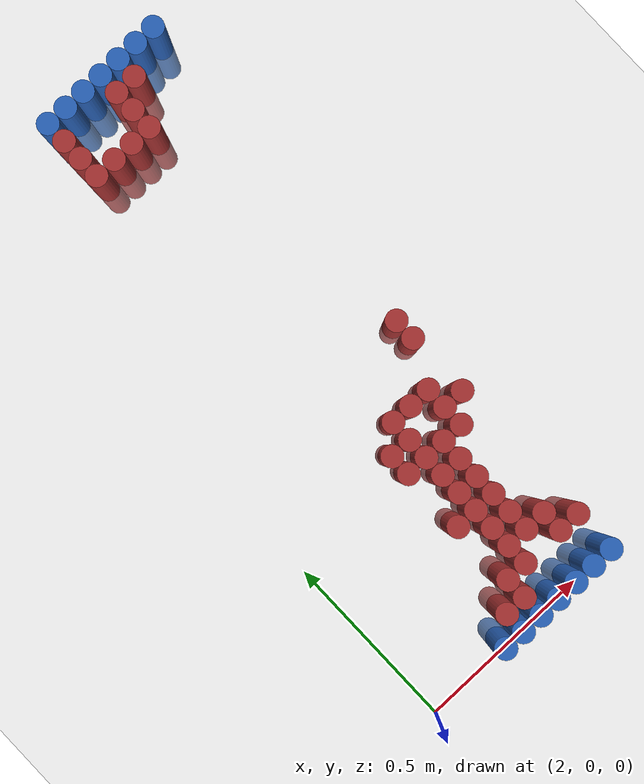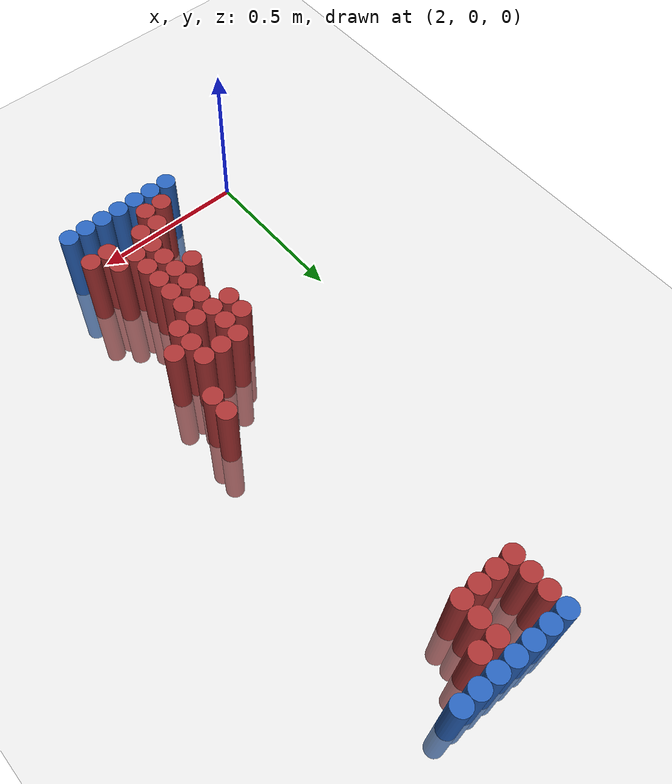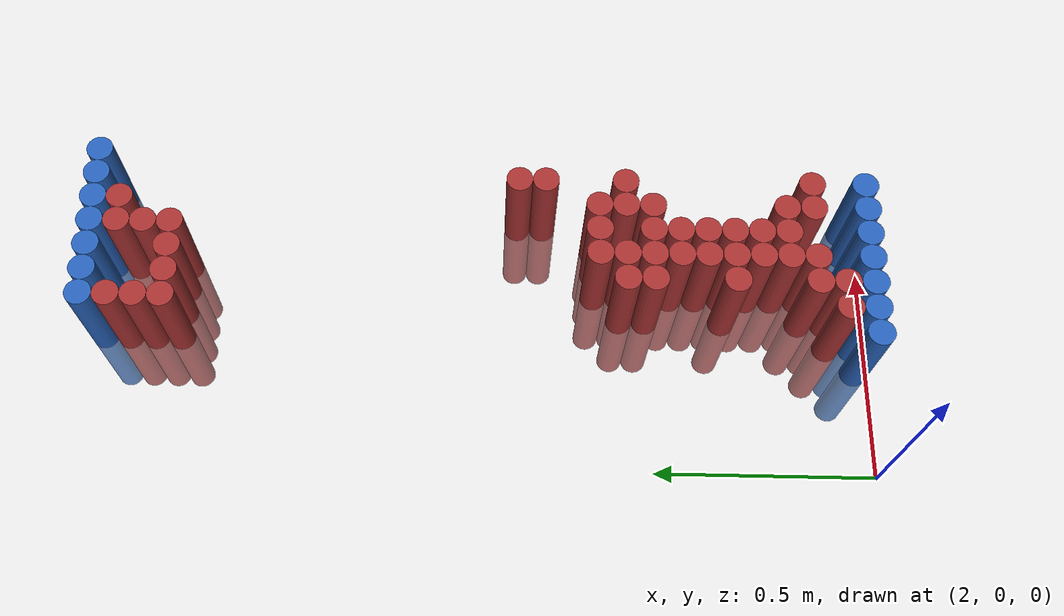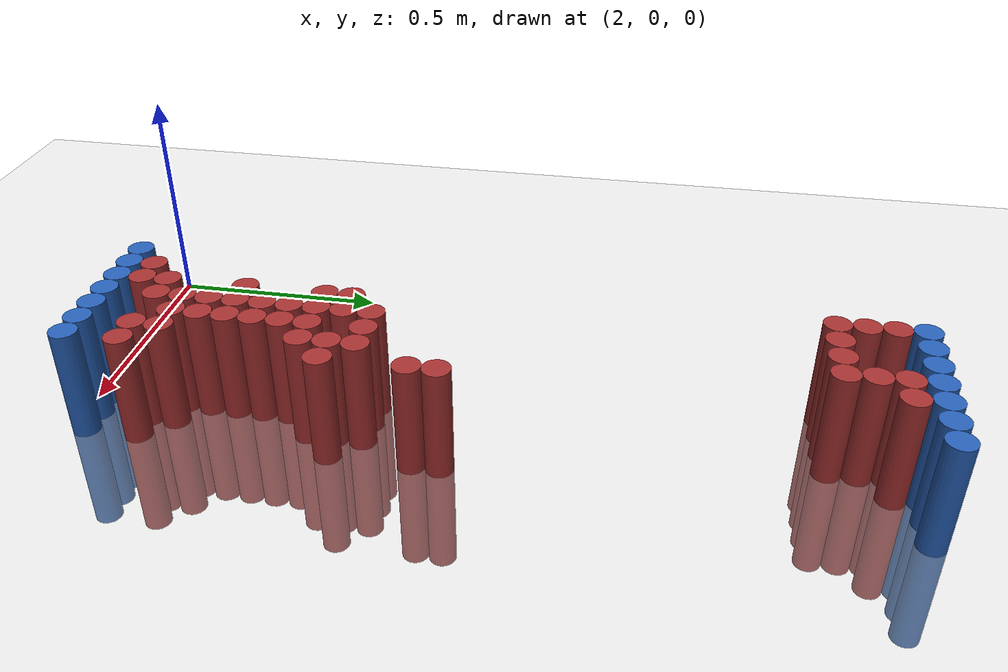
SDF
<sdf version="1.6">
 <world name="default">
  <model name="ground_plane">
   <static>1</static>
   <link name="link">
    <collision name="collision">
     <geometry><plane><normal>0 0 1</normal><size>100 100</size></plane></geometry>
     <surface><friction><ode><mu>100</mu><mu2>50</mu2></ode></friction></surface>
    </collision>
    <visual name="visual">
     <cast_shadows>0</cast_shadows>
     <geometry><plane><normal>0 0 1</normal><size>100 100</size></plane></geometry>
     <material>
      <script><uri>file://media/materials/scripts/gazebo.material</uri><name>Gazebo/Grey</name></script>
     </material>
    </visual>
   </link>
  </model>
  <model name="unit_cylinder_99">
   <static>1</static>
   <pose>2.310000 1.770000 0.000000 0.000000 0.000000 0.000000</pose>
   <link name="link">
    <inertial>
     <mass>1</mass>
     <inertia><ixx>0.145833</ixx><ixy>0</ixy><ixz>0</ixz><iyy>0.145833</iyy><iyz>0</iyz><izz>0.125</izz></inertia>
    </inertial>
    <collision name="collision">
     <geometry><cylinder><radius>0.030000</radius><length>0.5</length></cylinder></geometry>
    </collision>
    <visual name="visual">
     <geometry><cylinder><radius>0.030000</radius><length>0.5</length></cylinder></geometry>
     <material>
      <ambient>0.152000 0.379000 0.720000 1</ambient>
      <diffuse>0.152000 0.379000 0.720000 1</diffuse>
     </material>
     <material>
      <script><name>Gazebo/Grey</name><uri>file://media/materials/scripts/gazebo.material</uri></script>
     </material>
    </visual>
   </link>
  </model>
  <model name="unit_cylinder_100">
   <static>1</static>
   <pose>2.370000 1.770000 0.000000 0.000000 0.000000 0.000000</pose>
   <link name="link">
    <inertial>
     <mass>1</mass>
     <inertia><ixx>0.145833</ixx><ixy>0</ixy><ixz>0</ixz><iyy>0.145833</iyy><iyz>0</iyz><izz>0.125</izz></inertia>
    </inertial>
    <collision name="collision">
     <geometry><cylinder><radius>0.030000</radius><length>0.5</length></cylinder></geometry>
    </collision>
    <visual name="visual">
     <geometry><cylinder><radius>0.030000</radius><length>0.5</length></cylinder></geometry>
     <material>
      <ambient>0.152000 0.379000 0.720000 1</ambient>
      <diffuse>0.152000 0.379000 0.720000 1</diffuse>
     </material>
     <material>
      <script><name>Gazebo/Grey</name><uri>file://media/materials/scripts/gazebo.material</uri></script>
     </material>
    </visual>
   </link>
  </model>
  <model name="unit_cylinder_101">
   <static>1</static>
   <pose>2.430000 1.770000 0.000000 0.000000 0.000000 0.000000</pose>
   <link name="link">
    <inertial>
     <mass>1</mass>
     <inertia><ixx>0.145833</ixx><ixy>0</ixy><ixz>0</ixz><iyy>0.145833</iyy><iyz>0</iyz><izz>0.125</izz></inertia>
    </inertial>
    <collision name="collision">
     <geometry><cylinder><radius>0.030000</radius><length>0.5</length></cylinder></geometry>
    </collision>
    <visual name="visual">
     <geometry><cylinder><radius>0.030000</radius><length>0.5</length></cylinder></geometry>
     <material>
      <ambient>0.152000 0.379000 0.720000 1</ambient>
      <diffuse>0.152000 0.379000 0.720000 1</diffuse>
     </material>
     <material>
      <script><name>Gazebo/Grey</name><uri>file://media/materials/scripts/gazebo.material</uri></script>
     </material>
    </visual>
   </link>
  </model>
  <model name="unit_cylinder_102">
   <static>1</static>
   <pose>2.490000 1.770000 0.000000 0.000000 0.000000 0.000000</pose>
   <link name="link">
    <inertial>
     <mass>1</mass>
     <inertia><ixx>0.145833</ixx><ixy>0</ixy><ixz>0</ixz><iyy>0.145833</iyy><iyz>0</iyz><izz>0.125</izz></inertia>
    </inertial>
    <collision name="collision">
     <geometry><cylinder><radius>0.030000</radius><length>0.5</length></cylinder></geometry>
    </collision>
    <visual name="visual">
     <geometry><cylinder><radius>0.030000</radius><length>0.5</length></cylinder></geometry>
     <material>
      <ambient>0.152000 0.379000 0.720000 1</ambient>
      <diffuse>0.152000 0.379000 0.720000 1</diffuse>
     </material>
     <material>
      <script><name>Gazebo/Grey</name><uri>file://media/materials/scripts/gazebo.material</uri></script>
     </material>
    </visual>
   </link>
  </model>
  <model name="unit_cylinder_103">
   <static>1</static>
   <pose>2.550000 1.770000 0.000000 0.000000 0.000000 0.000000</pose>
   <link name="link">
    <inertial>
     <mass>1</mass>
     <inertia><ixx>0.145833</ixx><ixy>0</ixy><ixz>0</ixz><iyy>0.145833</iyy><iyz>0</iyz><izz>0.125</izz></inertia>
    </inertial>
    <collision name="collision">
     <geometry><cylinder><radius>0.030000</radius><length>0.5</length></cylinder></geometry>
    </collision>
    <visual name="visual">
     <geometry><cylinder><radius>0.030000</radius><length>0.5</length></cylinder></geometry>
     <material>
      <ambient>0.152000 0.379000 0.720000 1</ambient>
      <diffuse>0.152000 0.379000 0.720000 1</diffuse>
     </material>
     <material>
      <script><name>Gazebo/Grey</name><uri>file://media/materials/scripts/gazebo.material</uri></script>
     </material>
    </visual>
   </link>
  </model>
  <model name="unit_cylinder_104">
   <static>1</static>
   <pose>2.610000 1.770000 0.000000 0.000000 0.000000 0.000000</pose>
   <link name="link">
    <inertial>
     <mass>1</mass>
     <inertia><ixx>0.145833</ixx><ixy>0</ixy><ixz>0</ixz><iyy>0.145833</iyy><iyz>0</iyz><izz>0.125</izz></inertia>
    </inertial>
    <collision name="collision">
     <geometry><cylinder><radius>0.030000</radius><length>0.5</length></cylinder></geometry>
    </collision>
    <visual name="visual">
     <geometry><cylinder><radius>0.030000</radius><length>0.5</length></cylinder></geometry>
     <material>
      <ambient>0.152000 0.379000 0.720000 1</ambient>
      <diffuse>0.152000 0.379000 0.720000 1</diffuse>
     </material>
     <material>
      <script><name>Gazebo/Grey</name><uri>file://media/materials/scripts/gazebo.material</uri></script>
     </material>
    </visual>
   </link>
  </model>
  <model name="unit_cylinder_105">
   <static>1</static>
   <pose>2.670000 1.770000 0.000000 0.000000 0.000000 0.000000</pose>
   <link name="link">
    <inertial>
     <mass>1</mass>
     <inertia><ixx>0.145833</ixx><ixy>0</ixy><ixz>0</ixz><iyy>0.145833</iyy><iyz>0</iyz><izz>0.125</izz></inertia>
    </inertial>
    <collision name="collision">
     <geometry><cylinder><radius>0.030000</radius><length>0.5</length></cylinder></geometry>
    </collision>
    <visual name="visual">
     <geometry><cylinder><radius>0.030000</radius><length>0.5</length></cylinder></geometry>
     <material>
      <ambient>0.152000 0.379000 0.720000 1</ambient>
      <diffuse>0.152000 0.379000 0.720000 1</diffuse>
     </material>
     <material>
      <script><name>Gazebo/Grey</name><uri>file://media/materials/scripts/gazebo.material</uri></script>
     </material>
    </visual>
   </link>
  </model>
  <model name="unit_cylinder_126">
   <static>1</static>
   <pose>2.310000 1.710000 0.000000 0.000000 0.000000 0.000000</pose>
   <link name="link">
    <inertial>
     <mass>1</mass>
     <inertia><ixx>0.145833</ixx><ixy>0</ixy><ixz>0</ixz><iyy>0.145833</iyy><iyz>0</iyz><izz>0.125</izz></inertia>
    </inertial>
    <collision name="collision">
     <geometry><cylinder><radius>0.030000</radius><length>0.5</length></cylinder></geometry>
    </collision>
    <visual name="visual">
     <geometry><cylinder><radius>0.030000</radius><length>0.5</length></cylinder></geometry>
     <material>
      <ambient>0.648000 0.192000 0.192000 1</ambient>
      <diffuse>0.648000 0.192000 0.192000 1</diffuse>
     </material>
     <material>
      <script><name>Gazebo/Grey</name><uri>file://media/materials/scripts/gazebo.material</uri></script>
     </material>
    </visual>
   </link>
  </model>
  <model name="unit_cylinder_127">
   <static>1</static>
   <pose>2.490000 1.710000 0.000000 0.000000 0.000000 0.000000</pose>
   <link name="link">
    <inertial>
     <mass>1</mass>
     <inertia><ixx>0.145833</ixx><ixy>0</ixy><ixz>0</ixz><iyy>0.145833</iyy><iyz>0</iyz><izz>0.125</izz></inertia>
    </inertial>
    <collision name="collision">
     <geometry><cylinder><radius>0.030000</radius><length>0.5</length></cylinder></geometry>
    </collision>
    <visual name="visual">
     <geometry><cylinder><radius>0.030000</radius><length>0.5</length></cylinder></geometry>
     <material>
      <ambient>0.648000 0.192000 0.192000 1</ambient>
      <diffuse>0.648000 0.192000 0.192000 1</diffuse>
     </material>
     <material>
      <script><name>Gazebo/Grey</name><uri>file://media/materials/scripts/gazebo.material</uri></script>
     </material>
    </visual>
   </link>
  </model>
  <model name="unit_cylinder_128">
   <static>1</static>
   <pose>2.550000 1.710000 0.000000 0.000000 0.000000 0.000000</pose>
   <link name="link">
    <inertial>
     <mass>1</mass>
     <inertia><ixx>0.145833</ixx><ixy>0</ixy><ixz>0</ixz><iyy>0.145833</iyy><iyz>0</iyz><izz>0.125</izz></inertia>
    </inertial>
    <collision name="collision">
     <geometry><cylinder><radius>0.030000</radius><length>0.5</length></cylinder></geometry>
    </collision>
    <visual name="visual">
     <geometry><cylinder><radius>0.030000</radius><length>0.5</length></cylinder></geometry>
     <material>
      <ambient>0.648000 0.192000 0.192000 1</ambient>
      <diffuse>0.648000 0.192000 0.192000 1</diffuse>
     </material>
     <material>
      <script><name>Gazebo/Grey</name><uri>file://media/materials/scripts/gazebo.material</uri></script>
     </material>
    </visual>
   </link>
  </model>
  <model name="unit_cylinder_141">
   <static>1</static>
   <pose>2.310000 1.650000 0.000000 0.000000 0.000000 0.000000</pose>
   <link name="link">
    <inertial>
     <mass>1</mass>
     <inertia><ixx>0.145833</ixx><ixy>0</ixy><ixz>0</ixz><iyy>0.145833</iyy><iyz>0</iyz><izz>0.125</izz></inertia>
    </inertial>
    <collision name="collision">
     <geometry><cylinder><radius>0.030000</radius><length>0.5</length></cylinder></geometry>
    </collision>
    <visual name="visual">
     <geometry><cylinder><radius>0.030000</radius><length>0.5</length></cylinder></geometry>
     <material>
      <ambient>0.648000 0.192000 0.192000 1</ambient>
      <diffuse>0.648000 0.192000 0.192000 1</diffuse>
     </material>
     <material>
      <script><name>Gazebo/Grey</name><uri>file://media/materials/scripts/gazebo.material</uri></script>
     </material>
    </visual>
   </link>
  </model>
  <model name="unit_cylinder_142">
   <static>1</static>
   <pose>2.490000 1.650000 0.000000 0.000000 0.000000 0.000000</pose>
   <link name="link">
    <inertial>
     <mass>1</mass>
     <inertia><ixx>0.145833</ixx><ixy>0</ixy><ixz>0</ixz><iyy>0.145833</iyy><iyz>0</iyz><izz>0.125</izz></inertia>
    </inertial>
    <collision name="collision">
     <geometry><cylinder><radius>0.030000</radius><length>0.5</length></cylinder></geometry>
    </collision>
    <visual name="visual">
     <geometry><cylinder><radius>0.030000</radius><length>0.5</length></cylinder></geometry>
     <material>
      <ambient>0.648000 0.192000 0.192000 1</ambient>
      <diffuse>0.648000 0.192000 0.192000 1</diffuse>
     </material>
     <material>
      <script><name>Gazebo/Grey</name><uri>file://media/materials/scripts/gazebo.material</uri></script>
     </material>
    </visual>
   </link>
  </model>
  <model name="unit_cylinder_148">
   <static>1</static>
   <pose>2.310000 1.590000 0.000000 0.000000 0.000000 0.000000</pose>
   <link name="link">
    <inertial>
     <mass>1</mass>
     <inertia><ixx>0.145833</ixx><ixy>0</ixy><ixz>0</ixz><iyy>0.145833</iyy><iyz>0</iyz><izz>0.125</izz></inertia>
    </inertial>
    <collision name="collision">
     <geometry><cylinder><radius>0.030000</radius><length>0.5</length></cylinder></geometry>
    </collision>
    <visual name="visual">
     <geometry><cylinder><radius>0.030000</radius><length>0.5</length></cylinder></geometry>
     <material>
      <ambient>0.648000 0.192000 0.192000 1</ambient>
      <diffuse>0.648000 0.192000 0.192000 1</diffuse>
     </material>
     <material>
      <script><name>Gazebo/Grey</name><uri>file://media/materials/scripts/gazebo.material</uri></script>
     </material>
    </visual>
   </link>
  </model>
  <model name="unit_cylinder_149">
   <static>1</static>
   <pose>2.370000 1.590000 0.000000 0.000000 0.000000 0.000000</pose>
   <link name="link">
    <inertial>
     <mass>1</mass>
     <inertia><ixx>0.145833</ixx><ixy>0</ixy><ixz>0</ixz><iyy>0.145833</iyy><iyz>0</iyz><izz>0.125</izz></inertia>
    </inertial>
    <collision name="collision">
     <geometry><cylinder><radius>0.030000</radius><length>0.5</length></cylinder></geometry>
    </collision>
    <visual name="visual">
     <geometry><cylinder><radius>0.030000</radius><length>0.5</length></cylinder></geometry>
     <material>
      <ambient>0.648000 0.192000 0.192000 1</ambient>
      <diffuse>0.648000 0.192000 0.192000 1</diffuse>
     </material>
     <material>
      <script><name>Gazebo/Grey</name><uri>file://media/materials/scripts/gazebo.material</uri></script>
     </material>
    </visual>
   </link>
  </model>
  <model name="unit_cylinder_150">
   <static>1</static>
   <pose>2.430000 1.590000 0.000000 0.000000 0.000000 0.000000</pose>
   <link name="link">
    <inertial>
     <mass>1</mass>
     <inertia><ixx>0.145833</ixx><ixy>0</ixy><ixz>0</ixz><iyy>0.145833</iyy><iyz>0</iyz><izz>0.125</izz></inertia>
    </inertial>
    <collision name="collision">
     <geometry><cylinder><radius>0.030000</radius><length>0.5</length></cylinder></geometry>
    </collision>
    <visual name="visual">
     <geometry><cylinder><radius>0.030000</radius><length>0.5</length></cylinder></geometry>
     <material>
      <ambient>0.648000 0.192000 0.192000 1</ambient>
      <diffuse>0.648000 0.192000 0.192000 1</diffuse>
     </material>
     <material>
      <script><name>Gazebo/Grey</name><uri>file://media/materials/scripts/gazebo.material</uri></script>
     </material>
    </visual>
   </link>
  </model>
  <model name="unit_cylinder_151">
   <static>1</static>
   <pose>2.490000 1.590000 0.000000 0.000000 0.000000 0.000000</pose>
   <link name="link">
    <inertial>
     <mass>1</mass>
     <inertia><ixx>0.145833</ixx><ixy>0</ixy><ixz>0</ixz><iyy>0.145833</iyy><iyz>0</iyz><izz>0.125</izz></inertia>
    </inertial>
    <collision name="collision">
     <geometry><cylinder><radius>0.030000</radius><length>0.5</length></cylinder></geometry>
    </collision>
    <visual name="visual">
     <geometry><cylinder><radius>0.030000</radius><length>0.5</length></cylinder></geometry>
     <material>
      <ambient>0.648000 0.192000 0.192000 1</ambient>
      <diffuse>0.648000 0.192000 0.192000 1</diffuse>
     </material>
     <material>
      <script><name>Gazebo/Grey</name><uri>file://media/materials/scripts/gazebo.material</uri></script>
     </material>
    </visual>
   </link>
  </model>
  <model name="unit_cylinder_180">
   <static>1</static>
   <pose>2.610000 0.810000 0.000000 0.000000 0.000000 0.000000</pose>
   <link name="link">
    <inertial>
     <mass>1</mass>
     <inertia><ixx>0.145833</ixx><ixy>0</ixy><ixz>0</ixz><iyy>0.145833</iyy><iyz>0</iyz><izz>0.125</izz></inertia>
    </inertial>
    <collision name="collision">
     <geometry><cylinder><radius>0.030000</radius><length>0.5</length></cylinder></geometry>
    </collision>
    <visual name="visual">
     <geometry><cylinder><radius>0.030000</radius><length>0.5</length></cylinder></geometry>
     <material>
      <ambient>0.648000 0.192000 0.192000 1</ambient>
      <diffuse>0.648000 0.192000 0.192000 1</diffuse>
     </material>
     <material>
      <script><name>Gazebo/Grey</name><uri>file://media/materials/scripts/gazebo.material</uri></script>
     </material>
    </visual>
   </link>
  </model>
  <model name="unit_cylinder_188">
   <static>1</static>
   <pose>2.610000 0.750000 0.000000 0.000000 0.000000 0.000000</pose>
   <link name="link">
    <inertial>
     <mass>1</mass>
     <inertia><ixx>0.145833</ixx><ixy>0</ixy><ixz>0</ixz><iyy>0.145833</iyy><iyz>0</iyz><izz>0.125</izz></inertia>
    </inertial>
    <collision name="collision">
     <geometry><cylinder><radius>0.030000</radius><length>0.5</length></cylinder></geometry>
    </collision>
    <visual name="visual">
     <geometry><cylinder><radius>0.030000</radius><length>0.5</length></cylinder></geometry>
     <material>
      <ambient>0.648000 0.192000 0.192000 1</ambient>
      <diffuse>0.648000 0.192000 0.192000 1</diffuse>
     </material>
     <material>
      <script><name>Gazebo/Grey</name><uri>file://media/materials/scripts/gazebo.material</uri></script>
     </material>
    </visual>
   </link>
  </model>
  <model name="unit_cylinder_201">
   <static>1</static>
   <pose>2.430000 0.630000 0.000000 0.000000 0.000000 0.000000</pose>
   <link name="link">
    <inertial>
     <mass>1</mass>
     <inertia><ixx>0.145833</ixx><ixy>0</ixy><ixz>0</ixz><iyy>0.145833</iyy><iyz>0</iyz><izz>0.125</izz></inertia>
    </inertial>
    <collision name="collision">
     <geometry><cylinder><radius>0.030000</radius><length>0.5</length></cylinder></geometry>
    </collision>
    <visual name="visual">
     <geometry><cylinder><radius>0.030000</radius><length>0.5</length></cylinder></geometry>
     <material>
      <ambient>0.648000 0.192000 0.192000 1</ambient>
      <diffuse>0.648000 0.192000 0.192000 1</diffuse>
     </material>
     <material>
      <script><name>Gazebo/Grey</name><uri>file://media/materials/scripts/gazebo.material</uri></script>
     </material>
    </visual>
   </link>
  </model>
  <model name="unit_cylinder_202">
   <static>1</static>
   <pose>2.490000 0.630000 0.000000 0.000000 0.000000 0.000000</pose>
   <link name="link">
    <inertial>
     <mass>1</mass>
     <inertia><ixx>0.145833</ixx><ixy>0</ixy><ixz>0</ixz><iyy>0.145833</iyy><iyz>0</iyz><izz>0.125</izz></inertia>
    </inertial>
    <collision name="collision">
     <geometry><cylinder><radius>0.030000</radius><length>0.5</length></cylinder></geometry>
    </collision>
    <visual name="visual">
     <geometry><cylinder><radius>0.030000</radius><length>0.5</length></cylinder></geometry>
     <material>
      <ambient>0.648000 0.192000 0.192000 1</ambient>
      <diffuse>0.648000 0.192000 0.192000 1</diffuse>
     </material>
     <material>
      <script><name>Gazebo/Grey</name><uri>file://media/materials/scripts/gazebo.material</uri></script>
     </material>
    </visual>
   </link>
  </model>
  <model name="unit_cylinder_203">
   <static>1</static>
   <pose>2.550000 0.630000 0.000000 0.000000 0.000000 0.000000</pose>
   <link name="link">
    <inertial>
     <mass>1</mass>
     <inertia><ixx>0.145833</ixx><ixy>0</ixy><ixz>0</ixz><iyy>0.145833</iyy><iyz>0</iyz><izz>0.125</izz></inertia>
    </inertial>
    <collision name="collision">
     <geometry><cylinder><radius>0.030000</radius><length>0.5</length></cylinder></geometry>
    </collision>
    <visual name="visual">
     <geometry><cylinder><radius>0.030000</radius><length>0.5</length></cylinder></geometry>
     <material>
      <ambient>0.648000 0.192000 0.192000 1</ambient>
      <diffuse>0.648000 0.192000 0.192000 1</diffuse>
     </material>
     <material>
      <script><name>Gazebo/Grey</name><uri>file://media/materials/scripts/gazebo.material</uri></script>
     </material>
    </visual>
   </link>
  </model>
  <model name="unit_cylinder_207">
   <static>1</static>
   <pose>2.370000 0.570000 0.000000 0.000000 0.000000 0.000000</pose>
   <link name="link">
    <inertial>
     <mass>1</mass>
     <inertia><ixx>0.145833</ixx><ixy>0</ixy><ixz>0</ixz><iyy>0.145833</iyy><iyz>0</iyz><izz>0.125</izz></inertia>
    </inertial>
    <collision name="collision">
     <geometry><cylinder><radius>0.030000</radius><length>0.5</length></cylinder></geometry>
    </collision>
    <visual name="visual">
     <geometry><cylinder><radius>0.030000</radius><length>0.5</length></cylinder></geometry>
     <material>
      <ambient>0.648000 0.192000 0.192000 1</ambient>
      <diffuse>0.648000 0.192000 0.192000 1</diffuse>
     </material>
     <material>
      <script><name>Gazebo/Grey</name><uri>file://media/materials/scripts/gazebo.material</uri></script>
     </material>
    </visual>
   </link>
  </model>
  <model name="unit_cylinder_208">
   <static>1</static>
   <pose>2.430000 0.570000 0.000000 0.000000 0.000000 0.000000</pose>
   <link name="link">
    <inertial>
     <mass>1</mass>
     <inertia><ixx>0.145833</ixx><ixy>0</ixy><ixz>0</ixz><iyy>0.145833</iyy><iyz>0</iyz><izz>0.125</izz></inertia>
    </inertial>
    <collision name="collision">
     <geometry><cylinder><radius>0.030000</radius><length>0.5</length></cylinder></geometry>
    </collision>
    <visual name="visual">
     <geometry><cylinder><radius>0.030000</radius><length>0.5</length></cylinder></geometry>
     <material>
      <ambient>0.648000 0.192000 0.192000 1</ambient>
      <diffuse>0.648000 0.192000 0.192000 1</diffuse>
     </material>
     <material>
      <script><name>Gazebo/Grey</name><uri>file://media/materials/scripts/gazebo.material</uri></script>
     </material>
    </visual>
   </link>
  </model>
  <model name="unit_cylinder_209">
   <static>1</static>
   <pose>2.550000 0.570000 0.000000 0.000000 0.000000 0.000000</pose>
   <link name="link">
    <inertial>
     <mass>1</mass>
     <inertia><ixx>0.145833</ixx><ixy>0</ixy><ixz>0</ixz><iyy>0.145833</iyy><iyz>0</iyz><izz>0.125</izz></inertia>
    </inertial>
    <collision name="collision">
     <geometry><cylinder><radius>0.030000</radius><length>0.5</length></cylinder></geometry>
    </collision>
    <visual name="visual">
     <geometry><cylinder><radius>0.030000</radius><length>0.5</length></cylinder></geometry>
     <material>
      <ambient>0.648000 0.192000 0.192000 1</ambient>
      <diffuse>0.648000 0.192000 0.192000 1</diffuse>
     </material>
     <material>
      <script><name>Gazebo/Grey</name><uri>file://media/materials/scripts/gazebo.material</uri></script>
     </material>
    </visual>
   </link>
  </model>
  <model name="unit_cylinder_210">
   <static>1</static>
   <pose>2.610000 0.570000 0.000000 0.000000 0.000000 0.000000</pose>
   <link name="link">
    <inertial>
     <mass>1</mass>
     <inertia><ixx>0.145833</ixx><ixy>0</ixy><ixz>0</ixz><iyy>0.145833</iyy><iyz>0</iyz><izz>0.125</izz></inertia>
    </inertial>
    <collision name="collision">
     <geometry><cylinder><radius>0.030000</radius><length>0.5</length></cylinder></geometry>
    </collision>
    <visual name="visual">
     <geometry><cylinder><radius>0.030000</radius><length>0.5</length></cylinder></geometry>
     <material>
      <ambient>0.648000 0.192000 0.192000 1</ambient>
      <diffuse>0.648000 0.192000 0.192000 1</diffuse>
     </material>
     <material>
      <script><name>Gazebo/Grey</name><uri>file://media/materials/scripts/gazebo.material</uri></script>
     </material>
    </visual>
   </link>
  </model>
  <model name="unit_cylinder_215">
   <static>1</static>
   <pose>2.370000 0.510000 0.000000 0.000000 0.000000 0.000000</pose>
   <link name="link">
    <inertial>
     <mass>1</mass>
     <inertia><ixx>0.145833</ixx><ixy>0</ixy><ixz>0</ixz><iyy>0.145833</iyy><iyz>0</iyz><izz>0.125</izz></inertia>
    </inertial>
    <collision name="collision">
     <geometry><cylinder><radius>0.030000</radius><length>0.5</length></cylinder></geometry>
    </collision>
    <visual name="visual">
     <geometry><cylinder><radius>0.030000</radius><length>0.5</length></cylinder></geometry>
     <material>
      <ambient>0.648000 0.192000 0.192000 1</ambient>
      <diffuse>0.648000 0.192000 0.192000 1</diffuse>
     </material>
     <material>
      <script><name>Gazebo/Grey</name><uri>file://media/materials/scripts/gazebo.material</uri></script>
     </material>
    </visual>
   </link>
  </model>
  <model name="unit_cylinder_216">
   <static>1</static>
   <pose>2.430000 0.510000 0.000000 0.000000 0.000000 0.000000</pose>
   <link name="link">
    <inertial>
     <mass>1</mass>
     <inertia><ixx>0.145833</ixx><ixy>0</ixy><ixz>0</ixz><iyy>0.145833</iyy><iyz>0</iyz><izz>0.125</izz></inertia>
    </inertial>
    <collision name="collision">
     <geometry><cylinder><radius>0.030000</radius><length>0.5</length></cylinder></geometry>
    </collision>
    <visual name="visual">
     <geometry><cylinder><radius>0.030000</radius><length>0.5</length></cylinder></geometry>
     <material>
      <ambient>0.648000 0.192000 0.192000 1</ambient>
      <diffuse>0.648000 0.192000 0.192000 1</diffuse>
     </material>
     <material>
      <script><name>Gazebo/Grey</name><uri>file://media/materials/scripts/gazebo.material</uri></script>
     </material>
    </visual>
   </link>
  </model>
  <model name="unit_cylinder_217">
   <static>1</static>
   <pose>2.490000 0.510000 0.000000 0.000000 0.000000 0.000000</pose>
   <link name="link">
    <inertial>
     <mass>1</mass>
     <inertia><ixx>0.145833</ixx><ixy>0</ixy><ixz>0</ixz><iyy>0.145833</iyy><iyz>0</iyz><izz>0.125</izz></inertia>
    </inertial>
    <collision name="collision">
     <geometry><cylinder><radius>0.030000</radius><length>0.5</length></cylinder></geometry>
    </collision>
    <visual name="visual">
     <geometry><cylinder><radius>0.030000</radius><length>0.5</length></cylinder></geometry>
     <material>
      <ambient>0.648000 0.192000 0.192000 1</ambient>
      <diffuse>0.648000 0.192000 0.192000 1</diffuse>
     </material>
     <material>
      <script><name>Gazebo/Grey</name><uri>file://media/materials/scripts/gazebo.material</uri></script>
     </material>
    </visual>
   </link>
  </model>
  <model name="unit_cylinder_218">
   <static>1</static>
   <pose>2.550000 0.510000 0.000000 0.000000 0.000000 0.000000</pose>
   <link name="link">
    <inertial>
     <mass>1</mass>
     <inertia><ixx>0.145833</ixx><ixy>0</ixy><ixz>0</ixz><iyy>0.145833</iyy><iyz>0</iyz><izz>0.125</izz></inertia>
    </inertial>
    <collision name="collision">
     <geometry><cylinder><radius>0.030000</radius><length>0.5</length></cylinder></geometry>
    </collision>
    <visual name="visual">
     <geometry><cylinder><radius>0.030000</radius><length>0.5</length></cylinder></geometry>
     <material>
      <ambient>0.648000 0.192000 0.192000 1</ambient>
      <diffuse>0.648000 0.192000 0.192000 1</diffuse>
     </material>
     <material>
      <script><name>Gazebo/Grey</name><uri>file://media/materials/scripts/gazebo.material</uri></script>
     </material>
    </visual>
   </link>
  </model>
  <model name="unit_cylinder_226">
   <static>1</static>
   <pose>2.430000 0.450000 0.000000 0.000000 0.000000 0.000000</pose>
   <link name="link">
    <inertial>
     <mass>1</mass>
     <inertia><ixx>0.145833</ixx><ixy>0</ixy><ixz>0</ixz><iyy>0.145833</iyy><iyz>0</iyz><izz>0.125</izz></inertia>
    </inertial>
    <collision name="collision">
     <geometry><cylinder><radius>0.030000</radius><length>0.5</length></cylinder></geometry>
    </collision>
    <visual name="visual">
     <geometry><cylinder><radius>0.030000</radius><length>0.5</length></cylinder></geometry>
     <material>
      <ambient>0.648000 0.192000 0.192000 1</ambient>
      <diffuse>0.648000 0.192000 0.192000 1</diffuse>
     </material>
     <material>
      <script><name>Gazebo/Grey</name><uri>file://media/materials/scripts/gazebo.material</uri></script>
     </material>
    </visual>
   </link>
  </model>
  <model name="unit_cylinder_227">
   <static>1</static>
   <pose>2.490000 0.450000 0.000000 0.000000 0.000000 0.000000</pose>
   <link name="link">
    <inertial>
     <mass>1</mass>
     <inertia><ixx>0.145833</ixx><ixy>0</ixy><ixz>0</ixz><iyy>0.145833</iyy><iyz>0</iyz><izz>0.125</izz></inertia>
    </inertial>
    <collision name="collision">
     <geometry><cylinder><radius>0.030000</radius><length>0.5</length></cylinder></geometry>
    </collision>
    <visual name="visual">
     <geometry><cylinder><radius>0.030000</radius><length>0.5</length></cylinder></geometry>
     <material>
      <ambient>0.648000 0.192000 0.192000 1</ambient>
      <diffuse>0.648000 0.192000 0.192000 1</diffuse>
     </material>
     <material>
      <script><name>Gazebo/Grey</name><uri>file://media/materials/scripts/gazebo.material</uri></script>
     </material>
    </visual>
   </link>
  </model>
  <model name="unit_cylinder_234">
   <static>1</static>
   <pose>2.430000 0.390000 0.000000 0.000000 0.000000 0.000000</pose>
   <link name="link">
    <inertial>
     <mass>1</mass>
     <inertia><ixx>0.145833</ixx><ixy>0</ixy><ixz>0</ixz><iyy>0.145833</iyy><iyz>0</iyz><izz>0.125</izz></inertia>
    </inertial>
    <collision name="collision">
     <geometry><cylinder><radius>0.030000</radius><length>0.5</length></cylinder></geometry>
    </collision>
    <visual name="visual">
     <geometry><cylinder><radius>0.030000</radius><length>0.5</length></cylinder></geometry>
     <material>
      <ambient>0.648000 0.192000 0.192000 1</ambient>
      <diffuse>0.648000 0.192000 0.192000 1</diffuse>
     </material>
     <material>
      <script><name>Gazebo/Grey</name><uri>file://media/materials/scripts/gazebo.material</uri></script>
     </material>
    </visual>
   </link>
  </model>
  <model name="unit_cylinder_235">
   <static>1</static>
   <pose>2.490000 0.390000 0.000000 0.000000 0.000000 0.000000</pose>
   <link name="link">
    <inertial>
     <mass>1</mass>
     <inertia><ixx>0.145833</ixx><ixy>0</ixy><ixz>0</ixz><iyy>0.145833</iyy><iyz>0</iyz><izz>0.125</izz></inertia>
    </inertial>
    <collision name="collision">
     <geometry><cylinder><radius>0.030000</radius><length>0.5</length></cylinder></geometry>
    </collision>
    <visual name="visual">
     <geometry><cylinder><radius>0.030000</radius><length>0.5</length></cylinder></geometry>
     <material>
      <ambient>0.648000 0.192000 0.192000 1</ambient>
      <diffuse>0.648000 0.192000 0.192000 1</diffuse>
     </material>
     <material>
      <script><name>Gazebo/Grey</name><uri>file://media/materials/scripts/gazebo.material</uri></script>
     </material>
    </visual>
   </link>
  </model>
  <model name="unit_cylinder_244">
   <static>1</static>
   <pose>2.370000 0.330000 0.000000 0.000000 0.000000 0.000000</pose>
   <link name="link">
    <inertial>
     <mass>1</mass>
     <inertia><ixx>0.145833</ixx><ixy>0</ixy><ixz>0</ixz><iyy>0.145833</iyy><iyz>0</iyz><izz>0.125</izz></inertia>
    </inertial>
    <collision name="collision">
     <geometry><cylinder><radius>0.030000</radius><length>0.5</length></cylinder></geometry>
    </collision>
    <visual name="visual">
     <geometry><cylinder><radius>0.030000</radius><length>0.5</length></cylinder></geometry>
     <material>
      <ambient>0.648000 0.192000 0.192000 1</ambient>
      <diffuse>0.648000 0.192000 0.192000 1</diffuse>
     </material>
     <material>
      <script><name>Gazebo/Grey</name><uri>file://media/materials/scripts/gazebo.material</uri></script>
     </material>
    </visual>
   </link>
  </model>
  <model name="unit_cylinder_245">
   <static>1</static>
   <pose>2.430000 0.330000 0.000000 0.000000 0.000000 0.000000</pose>
   <link name="link">
    <inertial>
     <mass>1</mass>
     <inertia><ixx>0.145833</ixx><ixy>0</ixy><ixz>0</ixz><iyy>0.145833</iyy><iyz>0</iyz><izz>0.125</izz></inertia>
    </inertial>
    <collision name="collision">
     <geometry><cylinder><radius>0.030000</radius><length>0.5</length></cylinder></geometry>
    </collision>
    <visual name="visual">
     <geometry><cylinder><radius>0.030000</radius><length>0.5</length></cylinder></geometry>
     <material>
      <ambient>0.648000 0.192000 0.192000 1</ambient>
      <diffuse>0.648000 0.192000 0.192000 1</diffuse>
     </material>
     <material>
      <script><name>Gazebo/Grey</name><uri>file://media/materials/scripts/gazebo.material</uri></script>
     </material>
    </visual>
   </link>
  </model>
  <model name="unit_cylinder_246">
   <static>1</static>
   <pose>2.490000 0.330000 0.000000 0.000000 0.000000 0.000000</pose>
   <link name="link">
    <inertial>
     <mass>1</mass>
     <inertia><ixx>0.145833</ixx><ixy>0</ixy><ixz>0</ixz><iyy>0.145833</iyy><iyz>0</iyz><izz>0.125</izz></inertia>
    </inertial>
    <collision name="collision">
     <geometry><cylinder><radius>0.030000</radius><length>0.5</length></cylinder></geometry>
    </collision>
    <visual name="visual">
     <geometry><cylinder><radius>0.030000</radius><length>0.5</length></cylinder></geometry>
     <material>
      <ambient>0.648000 0.192000 0.192000 1</ambient>
      <diffuse>0.648000 0.192000 0.192000 1</diffuse>
     </material>
     <material>
      <script><name>Gazebo/Grey</name><uri>file://media/materials/scripts/gazebo.material</uri></script>
     </material>
    </visual>
   </link>
  </model>
  <model name="unit_cylinder_253">
   <static>1</static>
   <pose>2.430000 0.270000 0.000000 0.000000 0.000000 0.000000</pose>
   <link name="link">
    <inertial>
     <mass>1</mass>
     <inertia><ixx>0.145833</ixx><ixy>0</ixy><ixz>0</ixz><iyy>0.145833</iyy><iyz>0</iyz><izz>0.125</izz></inertia>
    </inertial>
    <collision name="collision">
     <geometry><cylinder><radius>0.030000</radius><length>0.5</length></cylinder></geometry>
    </collision>
    <visual name="visual">
     <geometry><cylinder><radius>0.030000</radius><length>0.5</length></cylinder></geometry>
     <material>
      <ambient>0.648000 0.192000 0.192000 1</ambient>
      <diffuse>0.648000 0.192000 0.192000 1</diffuse>
     </material>
     <material>
      <script><name>Gazebo/Grey</name><uri>file://media/materials/scripts/gazebo.material</uri></script>
     </material>
    </visual>
   </link>
  </model>
  <model name="unit_cylinder_254">
   <static>1</static>
   <pose>2.490000 0.270000 0.000000 0.000000 0.000000 0.000000</pose>
   <link name="link">
    <inertial>
     <mass>1</mass>
     <inertia><ixx>0.145833</ixx><ixy>0</ixy><ixz>0</ixz><iyy>0.145833</iyy><iyz>0</iyz><izz>0.125</izz></inertia>
    </inertial>
    <collision name="collision">
     <geometry><cylinder><radius>0.030000</radius><length>0.5</length></cylinder></geometry>
    </collision>
    <visual name="visual">
     <geometry><cylinder><radius>0.030000</radius><length>0.5</length></cylinder></geometry>
     <material>
      <ambient>0.648000 0.192000 0.192000 1</ambient>
      <diffuse>0.648000 0.192000 0.192000 1</diffuse>
     </material>
     <material>
      <script><name>Gazebo/Grey</name><uri>file://media/materials/scripts/gazebo.material</uri></script>
     </material>
    </visual>
   </link>
  </model>
  <model name="unit_cylinder_262">
   <static>1</static>
   <pose>2.430000 0.210000 0.000000 0.000000 0.000000 0.000000</pose>
   <link name="link">
    <inertial>
     <mass>1</mass>
     <inertia><ixx>0.145833</ixx><ixy>0</ixy><ixz>0</ixz><iyy>0.145833</iyy><iyz>0</iyz><izz>0.125</izz></inertia>
    </inertial>
    <collision name="collision">
     <geometry><cylinder><radius>0.030000</radius><length>0.5</length></cylinder></geometry>
    </collision>
    <visual name="visual">
     <geometry><cylinder><radius>0.030000</radius><length>0.5</length></cylinder></geometry>
     <material>
      <ambient>0.648000 0.192000 0.192000 1</ambient>
      <diffuse>0.648000 0.192000 0.192000 1</diffuse>
     </material>
     <material>
      <script><name>Gazebo/Grey</name><uri>file://media/materials/scripts/gazebo.material</uri></script>
     </material>
    </visual>
   </link>
  </model>
  <model name="unit_cylinder_263">
   <static>1</static>
   <pose>2.490000 0.210000 0.000000 0.000000 0.000000 0.000000</pose>
   <link name="link">
    <inertial>
     <mass>1</mass>
     <inertia><ixx>0.145833</ixx><ixy>0</ixy><ixz>0</ixz><iyy>0.145833</iyy><iyz>0</iyz><izz>0.125</izz></inertia>
    </inertial>
    <collision name="collision">
     <geometry><cylinder><radius>0.030000</radius><length>0.5</length></cylinder></geometry>
    </collision>
    <visual name="visual">
     <geometry><cylinder><radius>0.030000</radius><length>0.5</length></cylinder></geometry>
     <material>
      <ambient>0.648000 0.192000 0.192000 1</ambient>
      <diffuse>0.648000 0.192000 0.192000 1</diffuse>
     </material>
     <material>
      <script><name>Gazebo/Grey</name><uri>file://media/materials/scripts/gazebo.material</uri></script>
     </material>
    </visual>
   </link>
  </model>
  <model name="unit_cylinder_264">
   <static>1</static>
   <pose>2.550000 0.210000 0.000000 0.000000 0.000000 0.000000</pose>
   <link name="link">
    <inertial>
     <mass>1</mass>
     <inertia><ixx>0.145833</ixx><ixy>0</ixy><ixz>0</ixz><iyy>0.145833</iyy><iyz>0</iyz><izz>0.125</izz></inertia>
    </inertial>
    <collision name="collision">
     <geometry><cylinder><radius>0.030000</radius><length>0.5</length></cylinder></geometry>
    </collision>
    <visual name="visual">
     <geometry><cylinder><radius>0.030000</radius><length>0.5</length></cylinder></geometry>
     <material>
      <ambient>0.648000 0.192000 0.192000 1</ambient>
      <diffuse>0.648000 0.192000 0.192000 1</diffuse>
     </material>
     <material>
      <script><name>Gazebo/Grey</name><uri>file://media/materials/scripts/gazebo.material</uri></script>
     </material>
    </visual>
   </link>
  </model>
  <model name="unit_cylinder_270">
   <static>1</static>
   <pose>2.370000 0.150000 0.000000 0.000000 0.000000 0.000000</pose>
   <link name="link">
    <inertial>
     <mass>1</mass>
     <inertia><ixx>0.145833</ixx><ixy>0</ixy><ixz>0</ixz><iyy>0.145833</iyy><iyz>0</iyz><izz>0.125</izz></inertia>
    </inertial>
    <collision name="collision">
     <geometry><cylinder><radius>0.030000</radius><length>0.5</length></cylinder></geometry>
    </collision>
    <visual name="visual">
     <geometry><cylinder><radius>0.030000</radius><length>0.5</length></cylinder></geometry>
     <material>
      <ambient>0.648000 0.192000 0.192000 1</ambient>
      <diffuse>0.648000 0.192000 0.192000 1</diffuse>
     </material>
     <material>
      <script><name>Gazebo/Grey</name><uri>file://media/materials/scripts/gazebo.material</uri></script>
     </material>
    </visual>
   </link>
  </model>
  <model name="unit_cylinder_271">
   <static>1</static>
   <pose>2.430000 0.150000 0.000000 0.000000 0.000000 0.000000</pose>
   <link name="link">
    <inertial>
     <mass>1</mass>
     <inertia><ixx>0.145833</ixx><ixy>0</ixy><ixz>0</ixz><iyy>0.145833</iyy><iyz>0</iyz><izz>0.125</izz></inertia>
    </inertial>
    <collision name="collision">
     <geometry><cylinder><radius>0.030000</radius><length>0.5</length></cylinder></geometry>
    </collision>
    <visual name="visual">
     <geometry><cylinder><radius>0.030000</radius><length>0.5</length></cylinder></geometry>
     <material>
      <ambient>0.648000 0.192000 0.192000 1</ambient>
      <diffuse>0.648000 0.192000 0.192000 1</diffuse>
     </material>
     <material>
      <script><name>Gazebo/Grey</name><uri>file://media/materials/scripts/gazebo.material</uri></script>
     </material>
    </visual>
   </link>
  </model>
  <model name="unit_cylinder_272">
   <static>1</static>
   <pose>2.550000 0.150000 0.000000 0.000000 0.000000 0.000000</pose>
   <link name="link">
    <inertial>
     <mass>1</mass>
     <inertia><ixx>0.145833</ixx><ixy>0</ixy><ixz>0</ixz><iyy>0.145833</iyy><iyz>0</iyz><izz>0.125</izz></inertia>
    </inertial>
    <collision name="collision">
     <geometry><cylinder><radius>0.030000</radius><length>0.5</length></cylinder></geometry>
    </collision>
    <visual name="visual">
     <geometry><cylinder><radius>0.030000</radius><length>0.5</length></cylinder></geometry>
     <material>
      <ambient>0.648000 0.192000 0.192000 1</ambient>
      <diffuse>0.648000 0.192000 0.192000 1</diffuse>
     </material>
     <material>
      <script><name>Gazebo/Grey</name><uri>file://media/materials/scripts/gazebo.material</uri></script>
     </material>
    </visual>
   </link>
  </model>
  <model name="unit_cylinder_273">
   <static>1</static>
   <pose>2.610000 0.150000 0.000000 0.000000 0.000000 0.000000</pose>
   <link name="link">
    <inertial>
     <mass>1</mass>
     <inertia><ixx>0.145833</ixx><ixy>0</ixy><ixz>0</ixz><iyy>0.145833</iyy><iyz>0</iyz><izz>0.125</izz></inertia>
    </inertial>
    <collision name="collision">
     <geometry><cylinder><radius>0.030000</radius><length>0.5</length></cylinder></geometry>
    </collision>
    <visual name="visual">
     <geometry><cylinder><radius>0.030000</radius><length>0.5</length></cylinder></geometry>
     <material>
      <ambient>0.648000 0.192000 0.192000 1</ambient>
      <diffuse>0.648000 0.192000 0.192000 1</diffuse>
     </material>
     <material>
      <script><name>Gazebo/Grey</name><uri>file://media/materials/scripts/gazebo.material</uri></script>
     </material>
    </visual>
   </link>
  </model>
  <model name="unit_cylinder_281">
   <static>1</static>
   <pose>2.310000 0.090000 0.000000 0.000000 0.000000 0.000000</pose>
   <link name="link">
    <inertial>
     <mass>1</mass>
     <inertia><ixx>0.145833</ixx><ixy>0</ixy><ixz>0</ixz><iyy>0.145833</iyy><iyz>0</iyz><izz>0.125</izz></inertia>
    </inertial>
    <collision name="collision">
     <geometry><cylinder><radius>0.030000</radius><length>0.5</length></cylinder></geometry>
    </collision>
    <visual name="visual">
     <geometry><cylinder><radius>0.030000</radius><length>0.5</length></cylinder></geometry>
     <material>
      <ambient>0.648000 0.192000 0.192000 1</ambient>
      <diffuse>0.648000 0.192000 0.192000 1</diffuse>
     </material>
     <material>
      <script><name>Gazebo/Grey</name><uri>file://media/materials/scripts/gazebo.material</uri></script>
     </material>
    </visual>
   </link>
  </model>
  <model name="unit_cylinder_282">
   <static>1</static>
   <pose>2.370000 0.090000 0.000000 0.000000 0.000000 0.000000</pose>
   <link name="link">
    <inertial>
     <mass>1</mass>
     <inertia><ixx>0.145833</ixx><ixy>0</ixy><ixz>0</ixz><iyy>0.145833</iyy><iyz>0</iyz><izz>0.125</izz></inertia>
    </inertial>
    <collision name="collision">
     <geometry><cylinder><radius>0.030000</radius><length>0.5</length></cylinder></geometry>
    </collision>
    <visual name="visual">
     <geometry><cylinder><radius>0.030000</radius><length>0.5</length></cylinder></geometry>
     <material>
      <ambient>0.648000 0.192000 0.192000 1</ambient>
      <diffuse>0.648000 0.192000 0.192000 1</diffuse>
     </material>
     <material>
      <script><name>Gazebo/Grey</name><uri>file://media/materials/scripts/gazebo.material</uri></script>
     </material>
    </visual>
   </link>
  </model>
  <model name="unit_cylinder_296">
   <static>1</static>
   <pose>2.250000 0.030000 0.000000 0.000000 0.000000 0.000000</pose>
   <link name="link">
    <inertial>
     <mass>1</mass>
     <inertia><ixx>0.145833</ixx><ixy>0</ixy><ixz>0</ixz><iyy>0.145833</iyy><iyz>0</iyz><izz>0.125</izz></inertia>
    </inertial>
    <collision name="collision">
     <geometry><cylinder><radius>0.030000</radius><length>0.5</length></cylinder></geometry>
    </collision>
    <visual name="visual">
     <geometry><cylinder><radius>0.030000</radius><length>0.5</length></cylinder></geometry>
     <material>
      <ambient>0.152000 0.379000 0.720000 1</ambient>
      <diffuse>0.152000 0.379000 0.720000 1</diffuse>
     </material>
     <material>
      <script><name>Gazebo/Grey</name><uri>file://media/materials/scripts/gazebo.material</uri></script>
     </material>
    </visual>
   </link>
  </model>
  <model name="unit_cylinder_297">
   <static>1</static>
   <pose>2.310000 0.030000 0.000000 0.000000 0.000000 0.000000</pose>
   <link name="link">
    <inertial>
     <mass>1</mass>
     <inertia><ixx>0.145833</ixx><ixy>0</ixy><ixz>0</ixz><iyy>0.145833</iyy><iyz>0</iyz><izz>0.125</izz></inertia>
    </inertial>
    <collision name="collision">
     <geometry><cylinder><radius>0.030000</radius><length>0.5</length></cylinder></geometry>
    </collision>
    <visual name="visual">
     <geometry><cylinder><radius>0.030000</radius><length>0.5</length></cylinder></geometry>
     <material>
      <ambient>0.152000 0.379000 0.720000 1</ambient>
      <diffuse>0.152000 0.379000 0.720000 1</diffuse>
     </material>
     <material>
      <script><name>Gazebo/Grey</name><uri>file://media/materials/scripts/gazebo.material</uri></script>
     </material>
    </visual>
   </link>
  </model>
  <model name="unit_cylinder_298">
   <static>1</static>
   <pose>2.370000 0.030000 0.000000 0.000000 0.000000 0.000000</pose>
   <link name="link">
    <inertial>
     <mass>1</mass>
     <inertia><ixx>0.145833</ixx><ixy>0</ixy><ixz>0</ixz><iyy>0.145833</iyy><iyz>0</iyz><izz>0.125</izz></inertia>
    </inertial>
    <collision name="collision">
     <geometry><cylinder><radius>0.030000</radius><length>0.5</length></cylinder></geometry>
    </collision>
    <visual name="visual">
     <geometry><cylinder><radius>0.030000</radius><length>0.5</length></cylinder></geometry>
     <material>
      <ambient>0.152000 0.379000 0.720000 1</ambient>
      <diffuse>0.152000 0.379000 0.720000 1</diffuse>
     </material>
     <material>
      <script><name>Gazebo/Grey</name><uri>file://media/materials/scripts/gazebo.material</uri></script>
     </material>
    </visual>
   </link>
  </model>
  <model name="unit_cylinder_299">
   <static>1</static>
   <pose>2.430000 0.030000 0.000000 0.000000 0.000000 0.000000</pose>
   <link name="link">
    <inertial>
     <mass>1</mass>
     <inertia><ixx>0.145833</ixx><ixy>0</ixy><ixz>0</ixz><iyy>0.145833</iyy><iyz>0</iyz><izz>0.125</izz></inertia>
    </inertial>
    <collision name="collision">
     <geometry><cylinder><radius>0.030000</radius><length>0.5</length></cylinder></geometry>
    </collision>
    <visual name="visual">
     <geometry><cylinder><radius>0.030000</radius><length>0.5</length></cylinder></geometry>
     <material>
      <ambient>0.152000 0.379000 0.720000 1</ambient>
      <diffuse>0.152000 0.379000 0.720000 1</diffuse>
     </material>
     <material>
      <script><name>Gazebo/Grey</name><uri>file://media/materials/scripts/gazebo.material</uri></script>
     </material>
    </visual>
   </link>
  </model>
  <model name="unit_cylinder_300">
   <static>1</static>
   <pose>2.490000 0.030000 0.000000 0.000000 0.000000 0.000000</pose>
   <link name="link">
    <inertial>
     <mass>1</mass>
     <inertia><ixx>0.145833</ixx><ixy>0</ixy><ixz>0</ixz><iyy>0.145833</iyy><iyz>0</iyz><izz>0.125</izz></inertia>
    </inertial>
    <collision name="collision">
     <geometry><cylinder><radius>0.030000</radius><length>0.5</length></cylinder></geometry>
    </collision>
    <visual name="visual">
     <geometry><cylinder><radius>0.030000</radius><length>0.5</length></cylinder></geometry>
     <material>
      <ambient>0.152000 0.379000 0.720000 1</ambient>
      <diffuse>0.152000 0.379000 0.720000 1</diffuse>
     </material>
     <material>
      <script><name>Gazebo/Grey</name><uri>file://media/materials/scripts/gazebo.material</uri></script>
     </material>
    </visual>
   </link>
  </model>
  <model name="unit_cylinder_301">
   <static>1</static>
   <pose>2.550000 0.030000 0.000000 0.000000 0.000000 0.000000</pose>
   <link name="link">
    <inertial>
     <mass>1</mass>
     <inertia><ixx>0.145833</ixx><ixy>0</ixy><ixz>0</ixz><iyy>0.145833</iyy><iyz>0</iyz><izz>0.125</izz></inertia>
    </inertial>
    <collision name="collision">
     <geometry><cylinder><radius>0.030000</radius><length>0.5</length></cylinder></geometry>
    </collision>
    <visual name="visual">
     <geometry><cylinder><radius>0.030000</radius><length>0.5</length></cylinder></geometry>
     <material>
      <ambient>0.152000 0.379000 0.720000 1</ambient>
      <diffuse>0.152000 0.379000 0.720000 1</diffuse>
     </material>
     <material>
      <script><name>Gazebo/Grey</name><uri>file://media/materials/scripts/gazebo.material</uri></script>
     </material>
    </visual>
   </link>
  </model>
  <model name="unit_cylinder_302">
   <static>1</static>
   <pose>2.610000 0.030000 0.000000 0.000000 0.000000 0.000000</pose>
   <link name="link">
    <inertial>
     <mass>1</mass>
     <inertia><ixx>0.145833</ixx><ixy>0</ixy><ixz>0</ixz><iyy>0.145833</iyy><iyz>0</iyz><izz>0.125</izz></inertia>
    </inertial>
    <collision name="collision">
     <geometry><cylinder><radius>0.030000</radius><length>0.5</length></cylinder></geometry>
    </collision>
    <visual name="visual">
     <geometry><cylinder><radius>0.030000</radius><length>0.5</length></cylinder></geometry>
     <material>
      <ambient>0.152000 0.379000 0.720000 1</ambient>
      <diffuse>0.152000 0.379000 0.720000 1</diffuse>
     </material>
     <material>
      <script><name>Gazebo/Grey</name><uri>file://media/materials/scripts/gazebo.material</uri></script>
     </material>
    </visual>
   </link>
  </model>
 </world>
</sdf>
